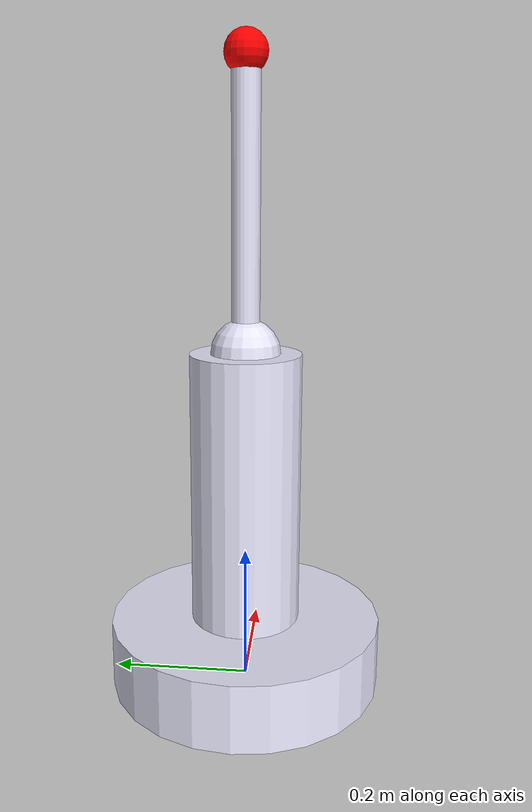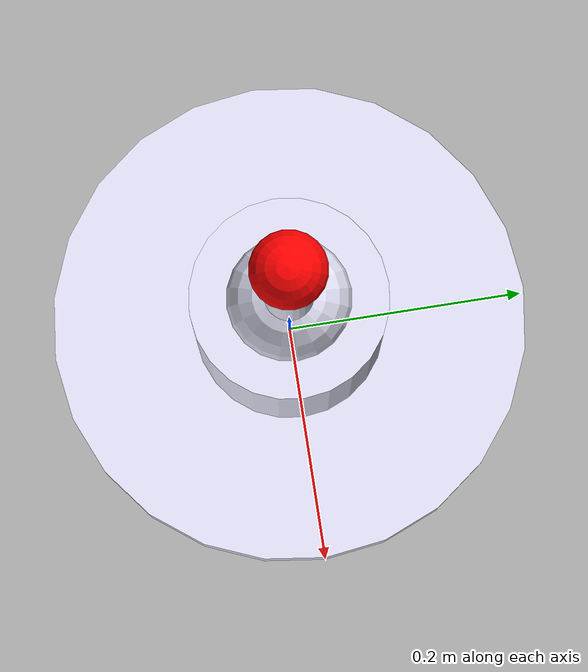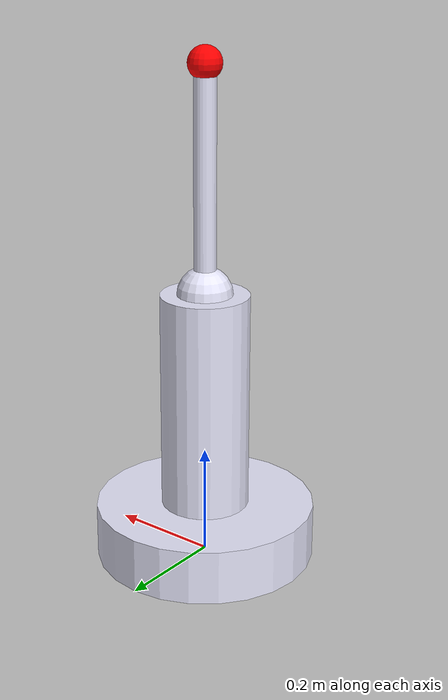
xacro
<?xml version="1.0"?>
<robot name="manipulator_robot2" xmlns:xacro="http://www.ros.org/wiki/xacro">

    <!-- Define materials for visualization -->
    <material name="blue">
        <color rgba="0.2 0.2 1 0.7"/>
    </material>
    <material name="black">
        <color rgba="0 0 0 0.95"/>
    </material>
    <material name="red">
        <color rgba="1 0 0 0.95"/>
    </material>
    <material name="silver">
        <color rgba="0.9 0.9 0.98 1.0"/>
    </material>

    <!-- Link 'world' for reference -->
    <link name="world"/>

    <!-- base_link is fixed to the world -->
    <joint name="world_to_base_link" type="fixed">
        <parent link="world"/>
        <child link="base_link"/>
        <origin xyz="0 0 0" rpy="0 0 0"/>
    </joint>

    <!-- base_link: cylinder with diameter 0.4 and height 0.1 -->
    <link name="base_link">
        <inertial>
            <origin xyz="0 0 0.05" rpy="0 0 0"/>
            <mass value="1.0"/>
            <inertia
                ixx="0.0108333"
                ixy="0.0"
                ixz="0.0"
                iyy="0.0108333"
                iyz="0.0"
                izz="0.02" />
        </inertial>

        <visual>
            <origin xyz="0 0 0.05" rpy="0 0 0"/>
            <geometry>
                <cylinder length="0.1" radius="0.2"/>
            </geometry>
            <material name="silver"/>
        </visual>

        <collision>
            <origin xyz="0 0 0.05" rpy="0 0 0"/>
            <geometry>
                <cylinder length="0.1" radius="0.2"/>
            </geometry>
        </collision>
    </link>

    <!-- Joint between base_link and link1 -->
    <joint name="base_link_to_link1" type="revolute">
        <parent link="base_link"/>
        <child link="link1"/>
        <origin xyz="0 0 0.1" rpy="0 0 0"/>
        <axis xyz="0 0 1"/>
        <limit lower="${-pi}" upper="${pi}" effort="10" velocity="1.0"/>
    </joint>

    <!-- link1: vertical cylinder with height 0.4 -->
    <link name="link1">
        <inertial>
            <origin xyz="0 0 0.2" rpy="0 0 0"/>
            <mass value="0.5"/>
            <inertia
                ixx="0.02"
                ixy="0.0"
                ixz="0.0"
                iyy="0.02"
                iyz="0.0"
                izz="0.005"/>
        </inertial>
        <visual>
            <origin xyz="0 0 0.2" rpy="0 0 0"/>
            <geometry>
                <cylinder length="0.4" radius="0.08"/>
            </geometry>
            <material name="silver"/>
        </visual>
        <collision>
            <origin xyz="0 0 0.2" rpy="0 0 0"/>
            <geometry>
            <!-- The length is 0.3 to prevent self-collision -->
                <cylinder length="0.3" radius="0.08"/>
            </geometry>
        </collision>
                <!-- added sphere just for visualization purposes, didn't add collision for this one -->
        <visual>
            <material name="silver"/>
            <origin xyz="0 0 0.4" rpy="0 0 0"/>
            <geometry>
                <sphere radius="0.05"/>
            </geometry>
        </visual>
    </link>

    <!-- Joint between link1 and link2 -->
    <joint name="link1_to_link2" type="revolute">
        <parent link="link1"/>
        <child link="link2"/>
        <origin xyz="0 0 0.4" rpy="0 0 0"/>
        <axis xyz="0 1 0"/>
        <limit lower="${-pi/2}" upper="${pi/2}" effort="10" velocity="1.0"/>
    </joint>

    <!-- link2: identical to link1 but with a smaller collision radius -->
    <link name="link2">
        <inertial>
            <origin xyz="0 0 0.2" rpy="0 0 0"/>
            <mass value="0.5"/>
            <inertia
                ixx="0.02"
                ixy="0.0"
                ixz="0.0"
                iyy="0.02"
                iyz="0.0"
                izz="0.005"/>
        </inertial>
        <visual>
            <origin xyz="0 0 0.2" rpy="0 0 0"/>
            <geometry>
                <cylinder length="0.4" radius="0.02"/>
            </geometry>
            <material name="silver"/>
        </visual>
        <collision>
            <origin xyz="0 0 0.2" rpy="0 0 0"/>
            <geometry>
                <cylinder length="0.4" radius="0.02"/>
            </geometry>
        </collision>
    </link>

    <!-- The end_effector has no collision -->
    <link name="end_effector">
        <visual>
            <geometry>
                <sphere radius="0.03"/>
            </geometry>
            <material name="red"/>
        </visual>
    </link>

    <joint name="link2_to_end_effector" type="fixed">
        <parent link="link2"/>
        <child link="end_effector"/>
        <origin xyz="0 0 0.4" rpy="0 0 0"/>
    </joint>

</robot>
